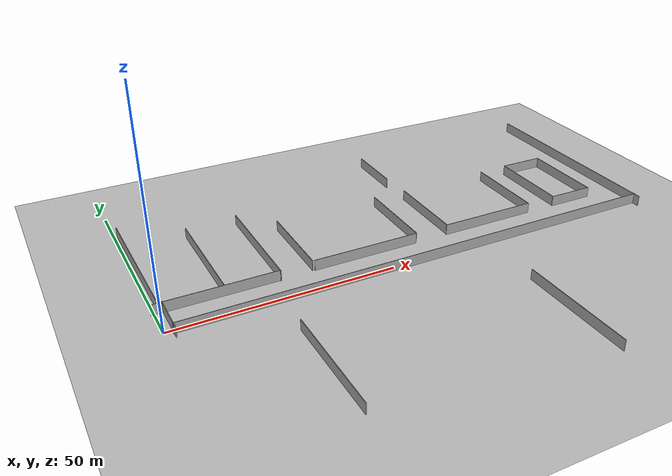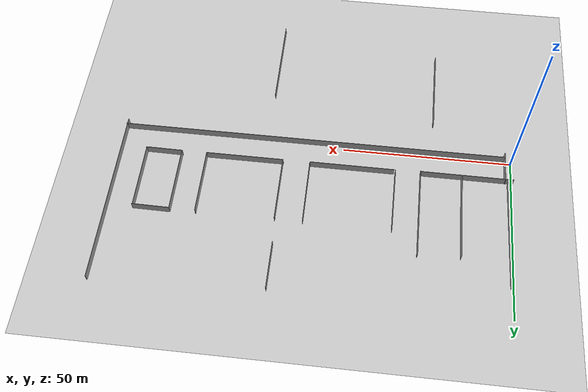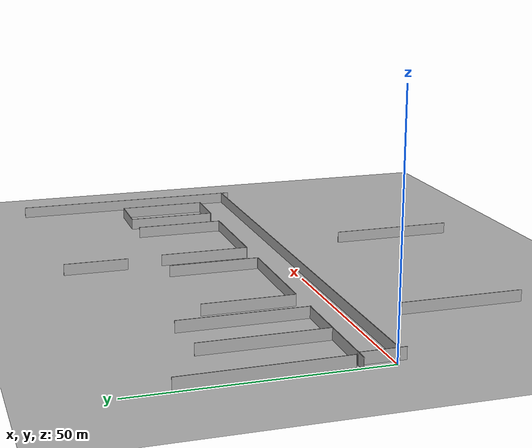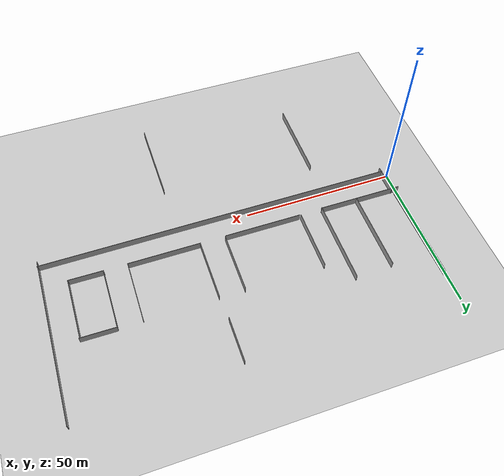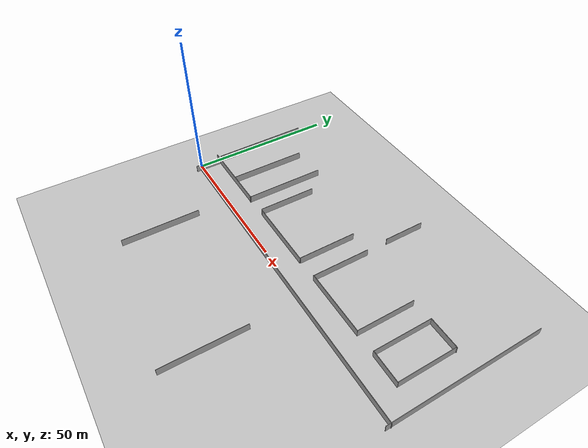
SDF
<sdf version="1.6">
 <world name="default">
  <model name="ground_plane">
   <static>1</static>
   <link name="link">
    <collision name="collision">
     <geometry><plane><normal>0 0 1</normal><size>100 100</size></plane></geometry>
     <surface>
      <contact><collide_bitmask>65535</collide_bitmask></contact>
      <friction><ode><mu>100</mu><mu2>50</mu2></ode></friction>
     </surface>
    </collision>
    <visual name="visual">
     <cast_shadows>0</cast_shadows>
     <geometry><plane><normal>0 0 1</normal><size>100 100</size></plane></geometry>
     <material>
      <script><uri>file://media/materials/scripts/gazebo.material</uri><name>Gazebo/Grey</name></script>
     </material>
    </visual>
   </link>
  </model>
  <model name="en_uzun_duvar2_clone_0">
   <link name="Wall_2">
    <pose>-3.83698 -0.045591 0 0 -0 0</pose>
    <inertial>
     <inertia><ixx>0</ixx><ixy>0</ixy><ixz>0</ixz><iyy>0</iyy><iyz>0</iyz><izz>0</izz></inertia>
     <mass>0</mass>
    </inertial>
    <visual name="Wall_2_Visual">
     <pose>0 0 1.25 0 -0 0</pose>
     <geometry><box><size>53.2897 0.15 2.5</size></box></geometry>
     <material>
      <script><uri>file://media/materials/scripts/gazebo.material</uri><name>Gazebo/Grey</name></script>
      <ambient>1 1 1 1</ambient>
     </material>
     <meta><layer>0</layer></meta>
    </visual>
    <collision name="Wall_2_Collision">
     <pose>0 0 1.25 0 -0 0</pose>
     <geometry><box><size>53.2897 0.15 2.5</size></box></geometry>
     <surface>
      <friction>
       <ode><mu>1</mu><mu2>1</mu2><fdir1>0 0 0</fdir1><slip1>0</slip1><slip2>0</slip2></ode>
       <torsional>
        <coefficient>1</coefficient>
        <patch_radius>0</patch_radius>
        <surface_radius>0</surface_radius>
        <use_patch_radius>1</use_patch_radius>
        <ode><slip>0</slip></ode>
       </torsional>
      </friction>
      <bounce><restitution_coefficient>0</restitution_coefficient><threshold>1e+06</threshold></bounce>
      <contact>
       <collide_without_contact>0</collide_without_contact>
       <collide_without_contact_bitmask>1</collide_without_contact_bitmask>
       <collide_bitmask>1</collide_bitmask>
       <ode>
        <soft_cfm>0</soft_cfm>
        <soft_erp>0.2</soft_erp>
        <kp>1e+13</kp>
        <kd>1</kd>
        <max_vel>0.01</max_vel>
        <min_depth>0</min_depth>
       </ode>
       <bullet>
        <split_impulse>1</split_impulse>
        <split_impulse_penetration_threshold>-0.01</split_impulse_penetration_threshold>
        <soft_cfm>0</soft_cfm>
        <soft_erp>0.2</soft_erp>
        <kp>1e+13</kp>
        <kd>1</kd>
       </bullet>
      </contact>
     </surface>
    </collision>
   </link>
   <static>1</static>
   <pose>116.717 27.7255 0 0 -0 1.57186</pose>
  </model>
  <model name="en_uzun_duvar2">
   <link name="Wall_2">
    <pose>1.00398 -0 0 0 -0 0</pose>
    <inertial>
     <inertia><ixx>0</ixx><ixy>0</ixy><ixz>0</ixz><iyy>0</iyy><iyz>0</iyz><izz>0</izz></inertia>
     <mass>0</mass>
    </inertial>
    <visual name="Wall_2_Visual">
     <pose>0 0 1.25 0 -0 0</pose>
     <geometry><box><size>115.363 0.15 2.5</size></box></geometry>
     <material>
      <script><uri>file://media/materials/scripts/gazebo.material</uri><name>Gazebo/Grey</name></script>
      <ambient>1 1 1 1</ambient>
     </material>
     <meta><layer>0</layer></meta>
    </visual>
    <collision name="Wall_2_Collision">
     <pose>0 0 1.25 0 -0 0</pose>
     <geometry><box><size>115.363 0.15 2.5</size></box></geometry>
     <surface>
      <friction>
       <ode><mu>1</mu><mu2>1</mu2><fdir1>0 0 0</fdir1><slip1>0</slip1><slip2>0</slip2></ode>
       <torsional>
        <coefficient>1</coefficient>
        <patch_radius>0</patch_radius>
        <surface_radius>0</surface_radius>
        <use_patch_radius>1</use_patch_radius>
        <ode><slip>0</slip></ode>
       </torsional>
      </friction>
      <bounce><restitution_coefficient>0</restitution_coefficient><threshold>1e+06</threshold></bounce>
      <contact>
       <collide_without_contact>0</collide_without_contact>
       <collide_without_contact_bitmask>1</collide_without_contact_bitmask>
       <collide_bitmask>1</collide_bitmask>
       <ode>
        <soft_cfm>0</soft_cfm>
        <soft_erp>0.2</soft_erp>
        <kp>1e+13</kp>
        <kd>1</kd>
        <max_vel>0.01</max_vel>
        <min_depth>0</min_depth>
       </ode>
       <bullet>
        <split_impulse>1</split_impulse>
        <split_impulse_penetration_threshold>-0.01</split_impulse_penetration_threshold>
        <soft_cfm>0</soft_cfm>
        <soft_erp>0.2</soft_erp>
        <kp>1e+13</kp>
        <kd>1</kd>
       </bullet>
      </contact>
     </surface>
    </collision>
   </link>
   <static>1</static>
   <pose>58.3673 -1.05458 0 0 -0 0</pose>
  </model>
  <model name="en_uzun_duvar2_clone_1_clone_clone_clone_3">
   <link name="Wall_2">
    <pose>10.2656 7.53235 0 0 -0 0</pose>
    <inertial>
     <inertia><ixx>0</ixx><ixy>0</ixy><ixz>0</ixz><iyy>0</iyy><iyz>0</iyz><izz>0</izz></inertia>
     <mass>0</mass>
    </inertial>
    <visual name="Wall_2_Visual">
     <pose>0 0 1.25 0 -0 0</pose>
     <geometry><box><size>19.779 0.15 2.5</size></box></geometry>
     <material>
      <script><uri>file://media/materials/scripts/gazebo.material</uri><name>Gazebo/Grey</name></script>
      <ambient>1 1 1 1</ambient>
     </material>
     <meta><layer>0</layer></meta>
    </visual>
    <collision name="Wall_2_Collision">
     <pose>0 0 1.25 0 -0 0</pose>
     <geometry><box><size>19.779 0.15 2.5</size></box></geometry>
     <surface>
      <friction>
       <ode><mu>1</mu><mu2>1</mu2><fdir1>0 0 0</fdir1><slip1>0</slip1><slip2>0</slip2></ode>
       <torsional>
        <coefficient>1</coefficient>
        <patch_radius>0</patch_radius>
        <surface_radius>0</surface_radius>
        <use_patch_radius>1</use_patch_radius>
        <ode><slip>0</slip></ode>
       </torsional>
      </friction>
      <bounce><restitution_coefficient>0</restitution_coefficient><threshold>1e+06</threshold></bounce>
      <contact>
       <collide_without_contact>0</collide_without_contact>
       <collide_without_contact_bitmask>1</collide_without_contact_bitmask>
       <collide_bitmask>1</collide_bitmask>
       <ode>
        <soft_cfm>0</soft_cfm>
        <soft_erp>0.2</soft_erp>
        <kp>1e+13</kp>
        <kd>1</kd>
        <max_vel>0.01</max_vel>
        <min_depth>0</min_depth>
       </ode>
       <bullet>
        <split_impulse>1</split_impulse>
        <split_impulse_penetration_threshold>-0.01</split_impulse_penetration_threshold>
        <soft_cfm>0</soft_cfm>
        <soft_erp>0.2</soft_erp>
        <kp>1e+13</kp>
        <kd>1</kd>
       </bullet>
      </contact>
     </surface>
    </collision>
   </link>
   <static>1</static>
   <pose>116.58 6.45625 0 0 -0 1.57059</pose>
  </model>
  <model name="en_uzun_duvar2_clone_1_clone_clone_clone_7">
   <link name="Wall_2">
    <pose>10.2656 7.53235 0 0 -0 0</pose>
    <inertial>
     <inertia><ixx>0</ixx><ixy>0</ixy><ixz>0</ixz><iyy>0</iyy><iyz>0</iyz><izz>0</izz></inertia>
     <mass>0</mass>
    </inertial>
    <visual name="Wall_2_Visual">
     <pose>0 0 1.25 0 -0 0</pose>
     <geometry><box><size>19.779 0.15 2.5</size></box></geometry>
     <material>
      <script><uri>file://media/materials/scripts/gazebo.material</uri><name>Gazebo/Grey</name></script>
      <ambient>1 1 1 1</ambient>
     </material>
     <meta><layer>0</layer></meta>
    </visual>
    <collision name="Wall_2_Collision">
     <pose>0 0 1.25 0 -0 0</pose>
     <geometry><box><size>19.779 0.15 2.5</size></box></geometry>
     <surface>
      <friction>
       <ode><mu>1</mu><mu2>1</mu2><fdir1>0 0 0</fdir1><slip1>0</slip1><slip2>0</slip2></ode>
       <torsional>
        <coefficient>1</coefficient>
        <patch_radius>0</patch_radius>
        <surface_radius>0</surface_radius>
        <use_patch_radius>1</use_patch_radius>
        <ode><slip>0</slip></ode>
       </torsional>
      </friction>
      <bounce><restitution_coefficient>0</restitution_coefficient><threshold>1e+06</threshold></bounce>
      <contact>
       <collide_without_contact>0</collide_without_contact>
       <collide_without_contact_bitmask>1</collide_without_contact_bitmask>
       <collide_bitmask>1</collide_bitmask>
       <ode>
        <soft_cfm>0</soft_cfm>
        <soft_erp>0.2</soft_erp>
        <kp>1e+13</kp>
        <kd>1</kd>
        <max_vel>0.01</max_vel>
        <min_depth>0</min_depth>
       </ode>
       <bullet>
        <split_impulse>1</split_impulse>
        <split_impulse_penetration_threshold>-0.01</split_impulse_penetration_threshold>
        <soft_cfm>0</soft_cfm>
        <soft_erp>0.2</soft_erp>
        <kp>1e+13</kp>
        <kd>1</kd>
       </bullet>
      </contact>
     </surface>
    </collision>
   </link>
   <static>1</static>
   <pose>75.3393 6.51625 0 0 -0 1.57059</pose>
  </model>
  <model name="en_uzun_duvar2_clone_1_clone_clone_clone_8">
   <link name="Wall_2">
    <pose>10.2656 7.53235 0 0 -0 0</pose>
    <inertial>
     <inertia><ixx>0</ixx><ixy>0</ixy><ixz>0</ixz><iyy>0</iyy><iyz>0</iyz><izz>0</izz></inertia>
     <mass>0</mass>
    </inertial>
    <visual name="Wall_2_Visual">
     <pose>0 0 1.25 0 -0 0</pose>
     <geometry><box><size>19.779 0.15 2.5</size></box></geometry>
     <material>
      <script><uri>file://media/materials/scripts/gazebo.material</uri><name>Gazebo/Grey</name></script>
      <ambient>1 1 1 1</ambient>
     </material>
     <meta><layer>0</layer></meta>
    </visual>
    <collision name="Wall_2_Collision">
     <pose>0 0 1.25 0 -0 0</pose>
     <geometry><box><size>19.779 0.15 2.5</size></box></geometry>
     <surface>
      <friction>
       <ode><mu>1</mu><mu2>1</mu2><fdir1>0 0 0</fdir1><slip1>0</slip1><slip2>0</slip2></ode>
       <torsional>
        <coefficient>1</coefficient>
        <patch_radius>0</patch_radius>
        <surface_radius>0</surface_radius>
        <use_patch_radius>1</use_patch_radius>
        <ode><slip>0</slip></ode>
       </torsional>
      </friction>
      <bounce><restitution_coefficient>0</restitution_coefficient><threshold>1e+06</threshold></bounce>
      <contact>
       <collide_without_contact>0</collide_without_contact>
       <collide_without_contact_bitmask>1</collide_without_contact_bitmask>
       <collide_bitmask>1</collide_bitmask>
       <ode>
        <soft_cfm>0</soft_cfm>
        <soft_erp>0.2</soft_erp>
        <kp>1e+13</kp>
        <kd>1</kd>
        <max_vel>0.01</max_vel>
        <min_depth>0</min_depth>
       </ode>
       <bullet>
        <split_impulse>1</split_impulse>
        <split_impulse_penetration_threshold>-0.01</split_impulse_penetration_threshold>
        <soft_cfm>0</soft_cfm>
        <soft_erp>0.2</soft_erp>
        <kp>1e+13</kp>
        <kd>1</kd>
       </bullet>
      </contact>
     </surface>
    </collision>
   </link>
   <static>1</static>
   <pose>67.2329 6.66775 0 0 -0 1.57059</pose>
  </model>
  <model name="en_uzun_duvar2_clone_1_clone_clone_clone_9">
   <link name="Wall_2">
    <pose>10.2656 7.53235 0 0 -0 0</pose>
    <inertial>
     <inertia><ixx>0</ixx><ixy>0</ixy><ixz>0</ixz><iyy>0</iyy><iyz>0</iyz><izz>0</izz></inertia>
     <mass>0</mass>
    </inertial>
    <visual name="Wall_2_Visual">
     <pose>0 0 1.25 0 -0 0</pose>
     <geometry><box><size>19.779 0.15 2.5</size></box></geometry>
     <material>
      <script><uri>file://media/materials/scripts/gazebo.material</uri><name>Gazebo/Grey</name></script>
      <ambient>1 1 1 1</ambient>
     </material>
     <meta><layer>0</layer></meta>
    </visual>
    <collision name="Wall_2_Collision">
     <pose>0 0 1.25 0 -0 0</pose>
     <geometry><box><size>19.779 0.15 2.5</size></box></geometry>
     <surface>
      <friction>
       <ode><mu>1</mu><mu2>1</mu2><fdir1>0 0 0</fdir1><slip1>0</slip1><slip2>0</slip2></ode>
       <torsional>
        <coefficient>1</coefficient>
        <patch_radius>0</patch_radius>
        <surface_radius>0</surface_radius>
        <use_patch_radius>1</use_patch_radius>
        <ode><slip>0</slip></ode>
       </torsional>
      </friction>
      <bounce><restitution_coefficient>0</restitution_coefficient><threshold>1e+06</threshold></bounce>
      <contact>
       <collide_without_contact>0</collide_without_contact>
       <collide_without_contact_bitmask>1</collide_without_contact_bitmask>
       <collide_bitmask>1</collide_bitmask>
       <ode>
        <soft_cfm>0</soft_cfm>
        <soft_erp>0.2</soft_erp>
        <kp>1e+13</kp>
        <kd>1</kd>
        <max_vel>0.01</max_vel>
        <min_depth>0</min_depth>
       </ode>
       <bullet>
        <split_impulse>1</split_impulse>
        <split_impulse_penetration_threshold>-0.01</split_impulse_penetration_threshold>
        <soft_cfm>0</soft_cfm>
        <soft_erp>0.2</soft_erp>
        <kp>1e+13</kp>
        <kd>1</kd>
       </bullet>
      </contact>
     </surface>
    </collision>
   </link>
   <static>1</static>
   <pose>98.3279 6.51975 0 0 -0 1.57059</pose>
  </model>
  <model name="en_uzun_duvar2_clone_1_clone_clone_clone_clone_1">
   <link name="Wall_2">
    <pose>9.82359 7.53236 0 0 -0 0</pose>
    <inertial>
     <inertia><ixx>0</ixx><ixy>0</ixy><ixz>0</ixz><iyy>0</iyy><iyz>0</iyz><izz>0</izz></inertia>
     <mass>0</mass>
    </inertial>
    <visual name="Wall_2_Visual">
     <pose>0 0 1.25 0 -0 0</pose>
     <geometry><box><size>11.0273 0.15 2.5</size></box></geometry>
     <material>
      <script><uri>file://media/materials/scripts/gazebo.material</uri><name>Gazebo/Grey</name></script>
      <ambient>1 1 1 1</ambient>
     </material>
     <meta><layer>0</layer></meta>
    </visual>
    <collision name="Wall_2_Collision">
     <pose>0 0 1.25 0 -0 0</pose>
     <geometry><box><size>11.0273 0.15 2.5</size></box></geometry>
     <surface>
      <friction>
       <ode><mu>1</mu><mu2>1</mu2><fdir1>0 0 0</fdir1><slip1>0</slip1><slip2>0</slip2></ode>
       <torsional>
        <coefficient>1</coefficient>
        <patch_radius>0</patch_radius>
        <surface_radius>0</surface_radius>
        <use_patch_radius>1</use_patch_radius>
        <ode><slip>0</slip></ode>
       </torsional>
      </friction>
      <bounce><restitution_coefficient>0</restitution_coefficient><threshold>1e+06</threshold></bounce>
      <contact>
       <collide_without_contact>0</collide_without_contact>
       <collide_without_contact_bitmask>1</collide_without_contact_bitmask>
       <collide_bitmask>1</collide_bitmask>
       <ode>
        <soft_cfm>0</soft_cfm>
        <soft_erp>0.2</soft_erp>
        <kp>1e+13</kp>
        <kd>1</kd>
        <max_vel>0.01</max_vel>
        <min_depth>0</min_depth>
       </ode>
       <bullet>
        <split_impulse>1</split_impulse>
        <split_impulse_penetration_threshold>-0.01</split_impulse_penetration_threshold>
        <soft_cfm>0</soft_cfm>
        <soft_erp>0.2</soft_erp>
        <kp>1e+13</kp>
        <kd>1</kd>
       </bullet>
      </contact>
     </surface>
    </collision>
   </link>
   <static>1</static>
   <pose>113.712 34.1944 0 0 -0 3.13031</pose>
  </model>
  <model name="en_uzun_duvar2_clone_1_clone_clone_clone_clone_3">
   <link name="Wall_2">
    <pose>9.82359 7.53236 0 0 -0 0</pose>
    <inertial>
     <inertia><ixx>0</ixx><ixy>0</ixy><ixz>0</ixz><iyy>0</iyy><iyz>0</iyz><izz>0</izz></inertia>
     <mass>0</mass>
    </inertial>
    <visual name="Wall_2_Visual">
     <pose>0 0 1.25 0 -0 0</pose>
     <geometry><box><size>11.0273 0.15 2.5</size></box></geometry>
     <material>
      <script><uri>file://media/materials/scripts/gazebo.material</uri><name>Gazebo/Grey</name></script>
      <ambient>1 1 1 1</ambient>
     </material>
     <meta><layer>0</layer></meta>
    </visual>
    <collision name="Wall_2_Collision">
     <pose>0 0 1.25 0 -0 0</pose>
     <geometry><box><size>11.0273 0.15 2.5</size></box></geometry>
     <surface>
      <friction>
       <ode><mu>1</mu><mu2>1</mu2><fdir1>0 0 0</fdir1><slip1>0</slip1><slip2>0</slip2></ode>
       <torsional>
        <coefficient>1</coefficient>
        <patch_radius>0</patch_radius>
        <surface_radius>0</surface_radius>
        <use_patch_radius>1</use_patch_radius>
        <ode><slip>0</slip></ode>
       </torsional>
      </friction>
      <bounce><restitution_coefficient>0</restitution_coefficient><threshold>1e+06</threshold></bounce>
      <contact>
       <collide_without_contact>0</collide_without_contact>
       <collide_without_contact_bitmask>1</collide_without_contact_bitmask>
       <collide_bitmask>1</collide_bitmask>
       <ode>
        <soft_cfm>0</soft_cfm>
        <soft_erp>0.2</soft_erp>
        <kp>1e+13</kp>
        <kd>1</kd>
        <max_vel>0.01</max_vel>
        <min_depth>0</min_depth>
       </ode>
       <bullet>
        <split_impulse>1</split_impulse>
        <split_impulse_penetration_threshold>-0.01</split_impulse_penetration_threshold>
        <soft_cfm>0</soft_cfm>
        <soft_erp>0.2</soft_erp>
        <kp>1e+13</kp>
        <kd>1</kd>
       </bullet>
      </contact>
     </surface>
    </collision>
   </link>
   <static>1</static>
   <pose>113.605 14.3356 0 0 -0 3.13031</pose>
  </model>
  <model name="en_uzun_duvar2_clone_1_clone_clone_clone_6_clone">
   <link name="Wall_2">
    <pose>10.2656 7.53235 0 0 -0 0</pose>
    <inertial>
     <inertia><ixx>0</ixx><ixy>0</ixy><ixz>0</ixz><iyy>0</iyy><iyz>0</iyz><izz>0</izz></inertia>
     <mass>0</mass>
    </inertial>
    <visual name="Wall_2_Visual">
     <pose>0 0 1.25 0 -0 0</pose>
     <geometry><box><size>19.779 0.15 2.5</size></box></geometry>
     <material>
      <script><uri>file://media/materials/scripts/gazebo.material</uri><name>Gazebo/Grey</name></script>
      <ambient>1 1 1 1</ambient>
     </material>
     <meta><layer>0</layer></meta>
    </visual>
    <collision name="Wall_2_Collision">
     <pose>0 0 1.25 0 -0 0</pose>
     <geometry><box><size>19.779 0.15 2.5</size></box></geometry>
     <surface>
      <friction>
       <ode><mu>1</mu><mu2>1</mu2><fdir1>0 0 0</fdir1><slip1>0</slip1><slip2>0</slip2></ode>
       <torsional>
        <coefficient>1</coefficient>
        <patch_radius>0</patch_radius>
        <surface_radius>0</surface_radius>
        <use_patch_radius>1</use_patch_radius>
        <ode><slip>0</slip></ode>
       </torsional>
      </friction>
      <bounce><restitution_coefficient>0</restitution_coefficient><threshold>1e+06</threshold></bounce>
      <contact>
       <collide_without_contact>0</collide_without_contact>
       <collide_without_contact_bitmask>1</collide_without_contact_bitmask>
       <collide_bitmask>1</collide_bitmask>
       <ode>
        <soft_cfm>0</soft_cfm>
        <soft_erp>0.2</soft_erp>
        <kp>1e+13</kp>
        <kd>1</kd>
        <max_vel>0.01</max_vel>
        <min_depth>0</min_depth>
       </ode>
       <bullet>
        <split_impulse>1</split_impulse>
        <split_impulse_penetration_threshold>-0.01</split_impulse_penetration_threshold>
        <soft_cfm>0</soft_cfm>
        <soft_erp>0.2</soft_erp>
        <kp>1e+13</kp>
        <kd>1</kd>
       </bullet>
      </contact>
     </surface>
    </collision>
   </link>
   <static>1</static>
   <pose>41.731 6.60135 0 0 -0 1.57059</pose>
  </model>
  <model name="en_uzun_duvar2_clone_1_clone_clone_clone_10_clone_3_clone_0">
   <link name="Wall_2">
    <pose>10.2656 7.53235 0 0 -0 0</pose>
    <inertial>
     <inertia><ixx>0</ixx><ixy>0</ixy><ixz>0</ixz><iyy>0</iyy><iyz>0</iyz><izz>0</izz></inertia>
     <mass>0</mass>
    </inertial>
    <visual name="Wall_2_Visual">
     <pose>0 0 1.25 0 -0 0</pose>
     <geometry><box><size>14.1147 0.15 2.5</size></box></geometry>
     <material>
      <script><uri>file://media/materials/scripts/gazebo.material</uri><name>Gazebo/Grey</name></script>
      <ambient>1 1 1 1</ambient>
     </material>
     <meta><layer>0</layer></meta>
    </visual>
    <collision name="Wall_2_Collision">
     <pose>0 0 1.25 0 -0 0</pose>
     <geometry><box><size>14.1147 0.15 2.5</size></box></geometry>
     <surface>
      <friction>
       <ode><mu>1</mu><mu2>1</mu2><fdir1>0 0 0</fdir1><slip1>0</slip1><slip2>0</slip2></ode>
       <torsional>
        <coefficient>1</coefficient>
        <patch_radius>0</patch_radius>
        <surface_radius>0</surface_radius>
        <use_patch_radius>1</use_patch_radius>
        <ode><slip>0</slip></ode>
       </torsional>
      </friction>
      <bounce><restitution_coefficient>0</restitution_coefficient><threshold>1e+06</threshold></bounce>
      <contact>
       <collide_without_contact>0</collide_without_contact>
       <collide_without_contact_bitmask>1</collide_without_contact_bitmask>
       <collide_bitmask>1</collide_bitmask>
       <ode>
        <soft_cfm>0</soft_cfm>
        <soft_erp>0.2</soft_erp>
        <kp>1e+13</kp>
        <kd>1</kd>
        <max_vel>0.01</max_vel>
        <min_depth>0</min_depth>
       </ode>
       <bullet>
        <split_impulse>1</split_impulse>
        <split_impulse_penetration_threshold>-0.01</split_impulse_penetration_threshold>
        <soft_cfm>0</soft_cfm>
        <soft_erp>0.2</soft_erp>
        <kp>1e+13</kp>
        <kd>1</kd>
       </bullet>
      </contact>
     </surface>
    </collision>
   </link>
   <static>1</static>
   <pose>74.8187 31.1317 0 0 -0 1.57059</pose>
  </model>
  <model name="en_uzun_duvar2_clone_1_clone_clone_clone_3_clone">
   <link name="Wall_2">
    <pose>10.2656 7.53235 0 0 -0 0</pose>
    <inertial>
     <inertia><ixx>0</ixx><ixy>0</ixy><ixz>0</ixz><iyy>0</iyy><iyz>0</iyz><izz>0</izz></inertia>
     <mass>0</mass>
    </inertial>
    <visual name="Wall_2_Visual">
     <pose>0 0 1.25 0 -0 0</pose>
     <geometry><box><size>19.779 0.15 2.5</size></box></geometry>
     <material>
      <script><uri>file://media/materials/scripts/gazebo.material</uri><name>Gazebo/Grey</name></script>
      <ambient>1 1 1 1</ambient>
     </material>
     <meta><layer>0</layer></meta>
    </visual>
    <collision name="Wall_2_Collision">
     <pose>0 0 1.25 0 -0 0</pose>
     <geometry><box><size>19.779 0.15 2.5</size></box></geometry>
     <surface>
      <friction>
       <ode><mu>1</mu><mu2>1</mu2><fdir1>0 0 0</fdir1><slip1>0</slip1><slip2>0</slip2></ode>
       <torsional>
        <coefficient>1</coefficient>
        <patch_radius>0</patch_radius>
        <surface_radius>0</surface_radius>
        <use_patch_radius>1</use_patch_radius>
        <ode><slip>0</slip></ode>
       </torsional>
      </friction>
      <bounce><restitution_coefficient>0</restitution_coefficient><threshold>1e+06</threshold></bounce>
      <contact>
       <collide_without_contact>0</collide_without_contact>
       <collide_without_contact_bitmask>1</collide_without_contact_bitmask>
       <collide_bitmask>1</collide_bitmask>
       <ode>
        <soft_cfm>0</soft_cfm>
        <soft_erp>0.2</soft_erp>
        <kp>1e+13</kp>
        <kd>1</kd>
        <max_vel>0.01</max_vel>
        <min_depth>0</min_depth>
       </ode>
       <bullet>
        <split_impulse>1</split_impulse>
        <split_impulse_penetration_threshold>-0.01</split_impulse_penetration_threshold>
        <soft_cfm>0</soft_cfm>
        <soft_erp>0.2</soft_erp>
        <kp>1e+13</kp>
        <kd>1</kd>
       </bullet>
      </contact>
     </surface>
    </collision>
   </link>
   <static>1</static>
   <pose>105.864 6.72185 0 0 -0 1.57059</pose>
  </model>
  <model name="en_uzun_duvar2_clone_1_clone_clone_clone_4_clone_2">
   <link name="Wall_2">
    <pose>10.2656 7.53235 0 0 -0 0</pose>
    <inertial>
     <inertia><ixx>0</ixx><ixy>0</ixy><ixz>0</ixz><iyy>0</iyy><iyz>0</iyz><izz>0</izz></inertia>
     <mass>0</mass>
    </inertial>
    <visual name="Wall_2_Visual">
     <pose>0 0 1.25 0 -0 0</pose>
     <geometry><box><size>23.1907 0.15 2.5</size></box></geometry>
     <material>
      <script><uri>file://media/materials/scripts/gazebo.material</uri><name>Gazebo/Grey</name></script>
      <ambient>1 1 1 1</ambient>
     </material>
     <meta><layer>0</layer></meta>
    </visual>
    <collision name="Wall_2_Collision">
     <pose>0 0 1.25 0 -0 0</pose>
     <geometry><box><size>23.1907 0.15 2.5</size></box></geometry>
     <surface>
      <friction>
       <ode><mu>1</mu><mu2>1</mu2><fdir1>0 0 0</fdir1><slip1>0</slip1><slip2>0</slip2></ode>
       <torsional>
        <coefficient>1</coefficient>
        <patch_radius>0</patch_radius>
        <surface_radius>0</surface_radius>
        <use_patch_radius>1</use_patch_radius>
        <ode><slip>0</slip></ode>
       </torsional>
      </friction>
      <bounce><restitution_coefficient>0</restitution_coefficient><threshold>1e+06</threshold></bounce>
      <contact>
       <collide_without_contact>0</collide_without_contact>
       <collide_without_contact_bitmask>1</collide_without_contact_bitmask>
       <collide_bitmask>1</collide_bitmask>
       <ode>
        <soft_cfm>0</soft_cfm>
        <soft_erp>0.2</soft_erp>
        <kp>1e+13</kp>
        <kd>1</kd>
        <max_vel>0.01</max_vel>
        <min_depth>0</min_depth>
       </ode>
       <bullet>
        <split_impulse>1</split_impulse>
        <split_impulse_penetration_threshold>-0.01</split_impulse_penetration_threshold>
        <soft_cfm>0</soft_cfm>
        <soft_erp>0.2</soft_erp>
        <kp>1e+13</kp>
        <kd>1</kd>
       </bullet>
      </contact>
     </surface>
    </collision>
   </link>
   <static>1</static>
   <pose>89.5249 14.4687 0 0 -0 3.14036</pose>
  </model>
  <model name="en_uzun_duvar2_clone_1_clone_clone_clone_4_clone_3_clone_0">
   <link name="Wall_2">
    <pose>10.2656 7.53235 0 0 -0 0</pose>
    <inertial>
     <inertia><ixx>0</ixx><ixy>0</ixy><ixz>0</ixz><iyy>0</iyy><iyz>0</iyz><izz>0</izz></inertia>
     <mass>0</mass>
    </inertial>
    <visual name="Wall_2_Visual">
     <pose>0 0 1.25 0 -0 0</pose>
     <geometry><box><size>24.9029 0.15 2.5</size></box></geometry>
     <material>
      <script><uri>file://media/materials/scripts/gazebo.material</uri><name>Gazebo/Grey</name></script>
      <ambient>1 1 1 1</ambient>
     </material>
     <meta><layer>0</layer></meta>
    </visual>
    <collision name="Wall_2_Collision">
     <pose>0 0 1.25 0 -0 0</pose>
     <geometry><box><size>24.9029 0.15 2.5</size></box></geometry>
     <surface>
      <friction>
       <ode><mu>1</mu><mu2>1</mu2><fdir1>0 0 0</fdir1><slip1>0</slip1><slip2>0</slip2></ode>
       <torsional>
        <coefficient>1</coefficient>
        <patch_radius>0</patch_radius>
        <surface_radius>0</surface_radius>
        <use_patch_radius>1</use_patch_radius>
        <ode><slip>0</slip></ode>
       </torsional>
      </friction>
      <bounce><restitution_coefficient>0</restitution_coefficient><threshold>1e+06</threshold></bounce>
      <contact>
       <collide_without_contact>0</collide_without_contact>
       <collide_without_contact_bitmask>1</collide_without_contact_bitmask>
       <collide_bitmask>1</collide_bitmask>
       <ode>
        <soft_cfm>0</soft_cfm>
        <soft_erp>0.2</soft_erp>
        <kp>1e+13</kp>
        <kd>1</kd>
        <max_vel>0.01</max_vel>
        <min_depth>0</min_depth>
       </ode>
       <bullet>
        <split_impulse>1</split_impulse>
        <split_impulse_penetration_threshold>-0.01</split_impulse_penetration_threshold>
        <soft_cfm>0</soft_cfm>
        <soft_erp>0.2</soft_erp>
        <kp>1e+13</kp>
        <kd>1</kd>
       </bullet>
      </contact>
     </surface>
    </collision>
   </link>
   <static>1</static>
   <pose>57.3504 14.4308 0 0 -0 3.14036</pose>
  </model>
  <model name="en_uzun_duvar2_clone_1_clone_clone_clone_4_clone_3_clone_4">
   <link name="Wall_2">
    <pose>10.2656 7.53235 0 0 -0 0</pose>
    <inertial>
     <inertia><ixx>0</ixx><ixy>0</ixy><ixz>0</ixz><iyy>0</iyy><iyz>0</iyz><izz>0</izz></inertia>
     <mass>0</mass>
    </inertial>
    <visual name="Wall_2_Visual">
     <pose>0 0 1.25 0 -0 0</pose>
     <geometry><box><size>27.457 0.15 2.5</size></box></geometry>
     <material>
      <script><uri>file://media/materials/scripts/gazebo.material</uri><name>Gazebo/Grey</name></script>
      <ambient>1 1 1 1</ambient>
     </material>
     <meta><layer>0</layer></meta>
    </visual>
    <collision name="Wall_2_Collision">
     <pose>0 0 1.25 0 -0 0</pose>
     <geometry><box><size>27.457 0.15 2.5</size></box></geometry>
     <surface>
      <friction>
       <ode><mu>1</mu><mu2>1</mu2><fdir1>0 0 0</fdir1><slip1>0</slip1><slip2>0</slip2></ode>
       <torsional>
        <coefficient>1</coefficient>
        <patch_radius>0</patch_radius>
        <surface_radius>0</surface_radius>
        <use_patch_radius>1</use_patch_radius>
        <ode><slip>0</slip></ode>
       </torsional>
      </friction>
      <bounce><restitution_coefficient>0</restitution_coefficient><threshold>1e+06</threshold></bounce>
      <contact>
       <collide_without_contact>0</collide_without_contact>
       <collide_without_contact_bitmask>1</collide_without_contact_bitmask>
       <collide_bitmask>1</collide_bitmask>
       <ode>
        <soft_cfm>0</soft_cfm>
        <soft_erp>0.2</soft_erp>
        <kp>1e+13</kp>
        <kd>1</kd>
        <max_vel>0.01</max_vel>
        <min_depth>0</min_depth>
       </ode>
       <bullet>
        <split_impulse>1</split_impulse>
        <split_impulse_penetration_threshold>-0.01</split_impulse_penetration_threshold>
        <soft_cfm>0</soft_cfm>
        <soft_erp>0.2</soft_erp>
        <kp>1e+13</kp>
        <kd>1</kd>
       </bullet>
      </contact>
     </surface>
    </collision>
   </link>
   <static>1</static>
   <pose>23.4243 14.2105 0 0 -0 3.14036</pose>
  </model>
  <model name="en_uzun_duvar2_clone_1_clone_clone_clone_4_clone_3_clone_5">
   <link name="Wall_2">
    <pose>10.2656 7.53235 0 0 -0 0</pose>
    <inertial>
     <inertia><ixx>0</ixx><ixy>0</ixy><ixz>0</ixz><iyy>0</iyy><iyz>0</iyz><izz>0</izz></inertia>
     <mass>0</mass>
    </inertial>
    <visual name="Wall_2_Visual">
     <pose>0 0 1.25 0 -0 0</pose>
     <geometry><box><size>33.2978 0.15 2.5</size></box></geometry>
     <material>
      <script><uri>file://media/materials/scripts/gazebo.material</uri><name>Gazebo/Grey</name></script>
      <ambient>1 1 1 1</ambient>
     </material>
     <meta><layer>0</layer></meta>
    </visual>
    <collision name="Wall_2_Collision">
     <pose>0 0 1.25 0 -0 0</pose>
     <geometry><box><size>33.2978 0.15 2.5</size></box></geometry>
     <surface>
      <friction>
       <ode><mu>1</mu><mu2>1</mu2><fdir1>0 0 0</fdir1><slip1>0</slip1><slip2>0</slip2></ode>
       <torsional>
        <coefficient>1</coefficient>
        <patch_radius>0</patch_radius>
        <surface_radius>0</surface_radius>
        <use_patch_radius>1</use_patch_radius>
        <ode><slip>0</slip></ode>
       </torsional>
      </friction>
      <bounce><restitution_coefficient>0</restitution_coefficient><threshold>1e+06</threshold></bounce>
      <contact>
       <collide_without_contact>0</collide_without_contact>
       <collide_without_contact_bitmask>1</collide_without_contact_bitmask>
       <collide_bitmask>1</collide_bitmask>
       <ode>
        <soft_cfm>0</soft_cfm>
        <soft_erp>0.2</soft_erp>
        <kp>1e+13</kp>
        <kd>1</kd>
        <max_vel>0.01</max_vel>
        <min_depth>0</min_depth>
       </ode>
       <bullet>
        <split_impulse>1</split_impulse>
        <split_impulse_penetration_threshold>-0.01</split_impulse_penetration_threshold>
        <soft_cfm>0</soft_cfm>
        <soft_erp>0.2</soft_erp>
        <kp>1e+13</kp>
        <kd>1</kd>
       </bullet>
      </contact>
     </surface>
    </collision>
   </link>
   <static>1</static>
   <pose>8.47961 13.9095 0 0 -0 1.57982</pose>
  </model>
  <model name="en_uzun_duvar2_clone_1_clone_clone_clone_4_clone_0_clone">
   <link name="Wall_2">
    <pose>10.2656 7.53235 0 0 -0 0</pose>
    <inertial>
     <inertia><ixx>0</ixx><ixy>0</ixy><ixz>0</ixz><iyy>0</iyy><iyz>0</iyz><izz>0</izz></inertia>
     <mass>0</mass>
    </inertial>
    <visual name="Wall_2_Visual">
     <pose>0 0 1.25 0 -0 0</pose>
     <geometry><box><size>27.4099 0.15 2.5</size></box></geometry>
     <material>
      <script><uri>file://media/materials/scripts/gazebo.material</uri><name>Gazebo/Grey</name></script>
      <ambient>1 1 1 1</ambient>
     </material>
     <meta><layer>0</layer></meta>
    </visual>
    <collision name="Wall_2_Collision">
     <pose>0 0 1.25 0 -0 0</pose>
     <geometry><box><size>27.4099 0.15 2.5</size></box></geometry>
     <surface>
      <friction>
       <ode><mu>1</mu><mu2>1</mu2><fdir1>0 0 0</fdir1><slip1>0</slip1><slip2>0</slip2></ode>
       <torsional>
        <coefficient>1</coefficient>
        <patch_radius>0</patch_radius>
        <surface_radius>0</surface_radius>
        <use_patch_radius>1</use_patch_radius>
        <ode><slip>0</slip></ode>
       </torsional>
      </friction>
      <bounce><restitution_coefficient>0</restitution_coefficient><threshold>1e+06</threshold></bounce>
      <contact>
       <collide_without_contact>0</collide_without_contact>
       <collide_without_contact_bitmask>1</collide_without_contact_bitmask>
       <collide_bitmask>1</collide_bitmask>
       <ode>
        <soft_cfm>0</soft_cfm>
        <soft_erp>0.2</soft_erp>
        <kp>1e+13</kp>
        <kd>1</kd>
        <max_vel>0.01</max_vel>
        <min_depth>0</min_depth>
       </ode>
       <bullet>
        <split_impulse>1</split_impulse>
        <split_impulse_penetration_threshold>-0.01</split_impulse_penetration_threshold>
        <soft_cfm>0</soft_cfm>
        <soft_erp>0.2</soft_erp>
        <kp>1e+13</kp>
        <kd>1</kd>
       </bullet>
      </contact>
     </surface>
    </collision>
   </link>
   <static>1</static>
   <pose>65.6376 -20.6591 0 0 0 -1.56922</pose>
  </model>
  <model name="en_uzun_duvar2_clone_1_clone_clone_clone_4_clone_0_clone_clone">
   <link name="Wall_2">
    <pose>10.2656 7.53235 0 0 -0 0</pose>
    <inertial>
     <inertia><ixx>0</ixx><ixy>0</ixy><ixz>0</ixz><iyy>0</iyy><iyz>0</iyz><izz>0</izz></inertia>
     <mass>0</mass>
    </inertial>
    <visual name="Wall_2_Visual">
     <pose>0 0 1.25 0 -0 0</pose>
     <geometry><box><size>27.4099 0.15 2.5</size></box></geometry>
     <material>
      <script><uri>file://media/materials/scripts/gazebo.material</uri><name>Gazebo/Grey</name></script>
      <ambient>1 1 1 1</ambient>
     </material>
     <meta><layer>0</layer></meta>
    </visual>
    <collision name="Wall_2_Collision">
     <pose>0 0 1.25 0 -0 0</pose>
     <geometry><box><size>27.4099 0.15 2.5</size></box></geometry>
     <surface>
      <friction>
       <ode><mu>1</mu><mu2>1</mu2><fdir1>0 0 0</fdir1><slip1>0</slip1><slip2>0</slip2></ode>
       <torsional>
        <coefficient>1</coefficient>
        <patch_radius>0</patch_radius>
        <surface_radius>0</surface_radius>
        <use_patch_radius>1</use_patch_radius>
        <ode><slip>0</slip></ode>
       </torsional>
      </friction>
      <bounce><restitution_coefficient>0</restitution_coefficient><threshold>1e+06</threshold></bounce>
      <contact>
       <collide_without_contact>0</collide_without_contact>
       <collide_without_contact_bitmask>1</collide_without_contact_bitmask>
       <collide_bitmask>1</collide_bitmask>
       <ode>
        <soft_cfm>0</soft_cfm>
        <soft_erp>0.2</soft_erp>
        <kp>1e+13</kp>
        <kd>1</kd>
        <max_vel>0.01</max_vel>
        <min_depth>0</min_depth>
       </ode>
       <bullet>
        <split_impulse>1</split_impulse>
        <split_impulse_penetration_threshold>-0.01</split_impulse_penetration_threshold>
        <soft_cfm>0</soft_cfm>
        <soft_erp>0.2</soft_erp>
        <kp>1e+13</kp>
        <kd>1</kd>
       </bullet>
      </contact>
     </surface>
    </collision>
   </link>
   <static>1</static>
   <pose>19.1819 30.3945 0 0 0 -1.56922</pose>
  </model>
  <model name="en_uzun_duvar2_clone_1_clone_clone_clone_4_clone_0_clone_clone_clone">
   <link name="Wall_2">
    <pose>10.2656 7.53235 0 0 -0 0</pose>
    <inertial>
     <inertia><ixx>0</ixx><ixy>0</ixy><ixz>0</ixz><iyy>0</iyy><iyz>0</iyz><izz>0</izz></inertia>
     <mass>0</mass>
    </inertial>
    <visual name="Wall_2_Visual">
     <pose>0 0 1.25 0 -0 0</pose>
     <geometry><box><size>26.4558 0.15 2.5</size></box></geometry>
     <material>
      <script><uri>file://media/materials/scripts/gazebo.material</uri><name>Gazebo/Grey</name></script>
      <ambient>1 1 1 1</ambient>
     </material>
     <meta><layer>0</layer></meta>
    </visual>
    <collision name="Wall_2_Collision">
     <pose>0 0 1.25 0 -0 0</pose>
     <geometry><box><size>26.4558 0.15 2.5</size></box></geometry>
     <surface>
      <friction>
       <ode><mu>1</mu><mu2>1</mu2><fdir1>0 0 0</fdir1><slip1>0</slip1><slip2>0</slip2></ode>
       <torsional>
        <coefficient>1</coefficient>
        <patch_radius>0</patch_radius>
        <surface_radius>0</surface_radius>
        <use_patch_radius>1</use_patch_radius>
        <ode><slip>0</slip></ode>
       </torsional>
      </friction>
      <bounce><restitution_coefficient>0</restitution_coefficient><threshold>1e+06</threshold></bounce>
      <contact>
       <collide_without_contact>0</collide_without_contact>
       <collide_without_contact_bitmask>1</collide_without_contact_bitmask>
       <collide_bitmask>1</collide_bitmask>
       <ode>
        <soft_cfm>0</soft_cfm>
        <soft_erp>0.2</soft_erp>
        <kp>1e+13</kp>
        <kd>1</kd>
        <max_vel>0.01</max_vel>
        <min_depth>0</min_depth>
       </ode>
       <bullet>
        <split_impulse>1</split_impulse>
        <split_impulse_penetration_threshold>-0.01</split_impulse_penetration_threshold>
        <soft_cfm>0</soft_cfm>
        <soft_erp>0.2</soft_erp>
        <kp>1e+13</kp>
        <kd>1</kd>
       </bullet>
      </contact>
     </surface>
    </collision>
   </link>
   <static>1</static>
   <pose>15.9561 -14.1121 0 0 0 -1.56922</pose>
  </model>
  <model name="en_uzun_duvar2_clone_1_clone_clone_clone_4_clone_0_clone_clone_clone_clone">
   <link name="Wall_2">
    <pose>10.2656 7.53235 0 0 -0 0</pose>
    <inertial>
     <inertia><ixx>0</ixx><ixy>0</ixy><ixz>0</ixz><iyy>0</iyy><iyz>0</iyz><izz>0</izz></inertia>
     <mass>0</mass>
    </inertial>
    <visual name="Wall_2_Visual">
     <pose>0 0 1.25 0 -0 0</pose>
     <geometry><box><size>26.4558 0.15 2.5</size></box></geometry>
     <material>
      <script><uri>file://media/materials/scripts/gazebo.material</uri><name>Gazebo/Grey</name></script>
      <ambient>1 1 1 1</ambient>
     </material>
     <meta><layer>0</layer></meta>
    </visual>
    <collision name="Wall_2_Collision">
     <pose>0 0 1.25 0 -0 0</pose>
     <geometry><box><size>26.4558 0.15 2.5</size></box></geometry>
     <surface>
      <friction>
       <ode><mu>1</mu><mu2>1</mu2><fdir1>0 0 0</fdir1><slip1>0</slip1><slip2>0</slip2></ode>
       <torsional>
        <coefficient>1</coefficient>
        <patch_radius>0</patch_radius>
        <surface_radius>0</surface_radius>
        <use_patch_radius>1</use_patch_radius>
        <ode><slip>0</slip></ode>
       </torsional>
      </friction>
      <bounce><restitution_coefficient>0</restitution_coefficient><threshold>1e+06</threshold></bounce>
      <contact>
       <collide_without_contact>0</collide_without_contact>
       <collide_without_contact_bitmask>1</collide_without_contact_bitmask>
       <collide_bitmask>1</collide_bitmask>
       <ode>
        <soft_cfm>0</soft_cfm>
        <soft_erp>0.2</soft_erp>
        <kp>1e+13</kp>
        <kd>1</kd>
        <max_vel>0.01</max_vel>
        <min_depth>0</min_depth>
       </ode>
       <bullet>
        <split_impulse>1</split_impulse>
        <split_impulse_penetration_threshold>-0.01</split_impulse_penetration_threshold>
        <soft_cfm>0</soft_cfm>
        <soft_erp>0.2</soft_erp>
        <kp>1e+13</kp>
        <kd>1</kd>
       </bullet>
      </contact>
     </surface>
    </collision>
   </link>
   <static>1</static>
   <pose>7.01718 30.2374 0 0 0 -1.56922</pose>
  </model>
  <model name="en_uzun_duvar2_clone_1_clone_clone_clone_10_clone_3_clone">
   <link name="Wall_2">
    <pose>10.2656 7.53235 0 0 -0 0</pose>
    <inertial>
     <inertia><ixx>0</ixx><ixy>0</ixy><ixz>0</ixz><iyy>0</iyy><iyz>0</iyz><izz>0</izz></inertia>
     <mass>0</mass>
    </inertial>
    <visual name="Wall_2_Visual">
     <pose>0 0 1.25 0 -0 0</pose>
     <geometry><box><size>9.49506 0.15 2.5</size></box></geometry>
     <material>
      <script><uri>file://media/materials/scripts/gazebo.material</uri><name>Gazebo/Grey</name></script>
      <ambient>1 1 1 1</ambient>
     </material>
     <meta><layer>0</layer></meta>
    </visual>
    <collision name="Wall_2_Collision">
     <pose>0 0 1.25 0 -0 0</pose>
     <geometry><box><size>9.49506 0.15 2.5</size></box></geometry>
     <surface>
      <friction>
       <ode><mu>1</mu><mu2>1</mu2><fdir1>0 0 0</fdir1><slip1>0</slip1><slip2>0</slip2></ode>
       <torsional>
        <coefficient>1</coefficient>
        <patch_radius>0</patch_radius>
        <surface_radius>0</surface_radius>
        <use_patch_radius>1</use_patch_radius>
        <ode><slip>0</slip></ode>
       </torsional>
      </friction>
      <bounce><restitution_coefficient>0</restitution_coefficient><threshold>1e+06</threshold></bounce>
      <contact>
       <collide_without_contact>0</collide_without_contact>
       <collide_without_contact_bitmask>1</collide_without_contact_bitmask>
       <collide_bitmask>1</collide_bitmask>
       <ode>
        <soft_cfm>0</soft_cfm>
        <soft_erp>0.2</soft_erp>
        <kp>1e+13</kp>
        <kd>1</kd>
        <max_vel>0.01</max_vel>
        <min_depth>0</min_depth>
       </ode>
       <bullet>
        <split_impulse>1</split_impulse>
        <split_impulse_penetration_threshold>-0.01</split_impulse_penetration_threshold>
        <soft_cfm>0</soft_cfm>
        <soft_erp>0.2</soft_erp>
        <kp>1e+13</kp>
        <kd>1</kd>
       </bullet>
      </contact>
     </surface>
    </collision>
   </link>
   <static>1</static>
   <pose>9.40398 -8.10115 0 0 -0 1.57059</pose>
  </model>
 </world>
</sdf>
